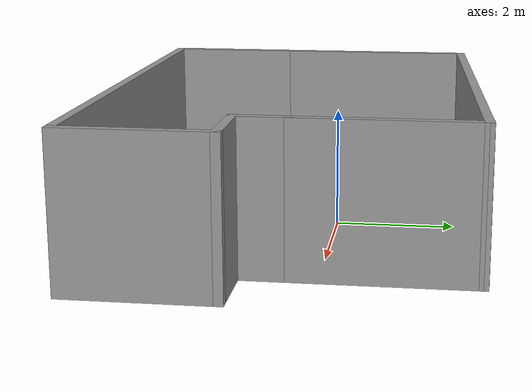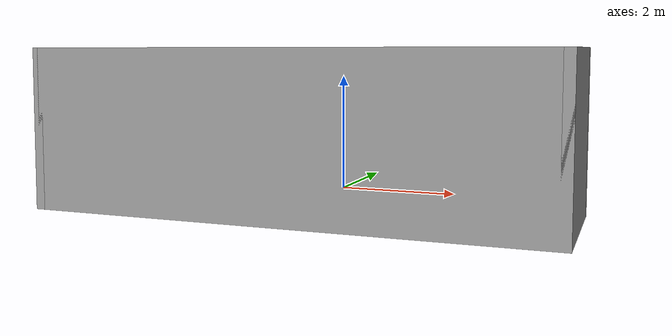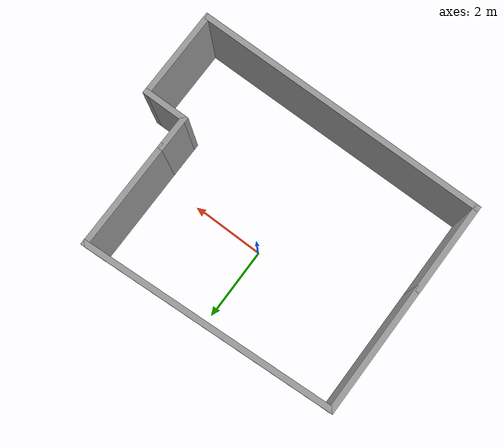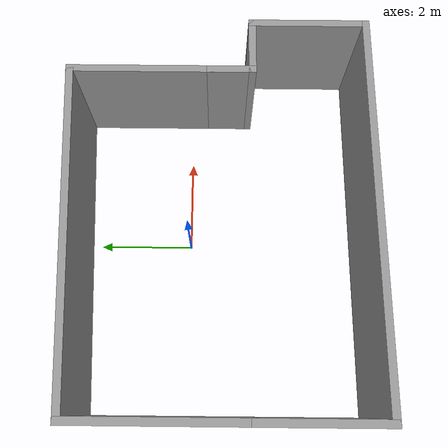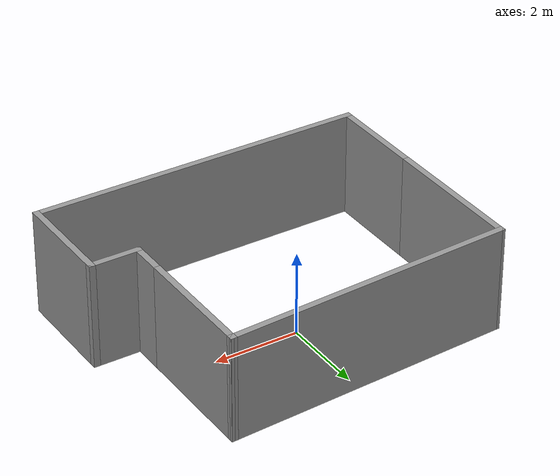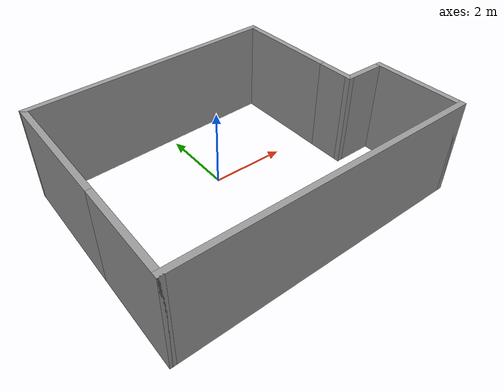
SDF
<?xml version='1.0'?>
<sdf version='1.6'>
  <model name='Building'>
    <pose frame=''>0.243109 -0.583108 0 0 -0 0</pose>
    <link name='Wall_0'>
      <collision name='Wall_0_Collision'>
        <geometry>
          <box>
            <size>2.5 0.15 2.5</size>
          </box>
        </geometry>
        <pose frame=''>0 0 1.25 0 -0 0</pose>
      </collision>
      <visual name='Wall_0_Visual'>
        <pose frame=''>0 0 1.25 0 -0 0</pose>
        <geometry>
          <box>
            <size>2.5 0.15 2.5</size>
          </box>
        </geometry>
        <material>
          <script>
            <uri>file://media/materials/scripts/gazebo.material</uri>
            <name>Gazebo/Grey</name>
          </script>
          <ambient>1 1 1 1</ambient>
        </material>
        <meta>
          <layer>0</layer>
        </meta>
      </visual>
      <pose frame=''>-3.92311 -1.85189 0 0 0 -1.5708</pose>
    </link>
    <link name='Wall_1'>
      <collision name='Wall_1_Collision'>
        <geometry>
          <box>
            <size>8 0.15 2.5</size>
          </box>
        </geometry>
        <pose frame=''>0 0 1.25 0 -0 0</pose>
      </collision>
      <visual name='Wall_1_Visual'>
        <pose frame=''>0 0 1.25 0 -0 0</pose>
        <geometry>
          <box>
            <size>8 0.15 2.5</size>
          </box>
        </geometry>
        <material>
          <script>
            <uri>file://media/materials/scripts/gazebo.material</uri>
            <name>Gazebo/Grey</name>
          </script>
          <ambient>1 1 1 1</ambient>
        </material>
        <meta>
          <layer>0</layer>
        </meta>
      </visual>
      <pose frame=''>0.001891 -3.02689 0 0 -0 0</pose>
    </link>
    <link name='Wall_2'>
      <collision name='Wall_2_Collision'>
        <geometry>
          <box>
            <size>2.5 0.15 2.5</size>
          </box>
        </geometry>
        <pose frame=''>0 0 1.25 0 -0 0</pose>
      </collision>
      <visual name='Wall_2_Visual'>
        <pose frame=''>0 0 1.25 0 -0 0</pose>
        <geometry>
          <box>
            <size>2.5 0.15 2.5</size>
          </box>
        </geometry>
        <material>
          <script>
            <uri>file://media/materials/scripts/gazebo.material</uri>
            <name>Gazebo/Grey</name>
          </script>
          <ambient>1 1 1 1</ambient>
        </material>
        <meta>
          <layer>0</layer>
        </meta>
      </visual>
      <pose frame=''>3.92689 -1.85189 0 0 -0 1.5708</pose>
    </link>
    <link name='Wall_3'>
      <collision name='Wall_3_Collision'>
        <geometry>
          <box>
            <size>1.25 0.15 2.5</size>
          </box>
        </geometry>
        <pose frame=''>0 0 1.25 0 -0 0</pose>
      </collision>
      <visual name='Wall_3_Visual'>
        <pose frame=''>0 0 1.25 0 -0 0</pose>
        <geometry>
          <box>
            <size>1.25 0.15 2.5</size>
          </box>
        </geometry>
        <material>
          <script>
            <uri>file://media/materials/scripts/gazebo.material</uri>
            <name>Gazebo/Grey</name>
          </script>
          <ambient>1 1 1 1</ambient>
        </material>
        <meta>
          <layer>0</layer>
        </meta>
      </visual>
      <pose frame=''>3.37689 -0.676892 0 0 -0 3.14159</pose>
    </link>
    <link name='Wall_4'>
      <collision name='Wall_4_Collision'>
        <geometry>
          <box>
            <size>1 0.15 2.5</size>
          </box>
        </geometry>
        <pose frame=''>0 0 1.25 0 -0 0</pose>
      </collision>
      <visual name='Wall_4_Visual'>
        <pose frame=''>0 0 1.25 0 -0 0</pose>
        <geometry>
          <box>
            <size>1 0.15 2.5</size>
          </box>
        </geometry>
        <material>
          <script>
            <uri>file://media/materials/scripts/gazebo.material</uri>
            <name>Gazebo/Grey</name>
          </script>
          <ambient>1 1 1 1</ambient>
        </material>
        <meta>
          <layer>0</layer>
        </meta>
      </visual>
      <pose frame=''>2.82689 -0.251892 0 0 -0 1.5708</pose>
    </link>
    <link name='Wall_5'>
      <collision name='Wall_5_Collision'>
        <geometry>
          <box>
            <size>3 0.15 2.5</size>
          </box>
        </geometry>
        <pose frame=''>0 0 1.25 0 -0 0</pose>
      </collision>
      <visual name='Wall_5_Visual'>
        <pose frame=''>0 0 1.25 0 -0 0</pose>
        <geometry>
          <box>
            <size>3 0.15 2.5</size>
          </box>
        </geometry>
        <material>
          <script>
            <uri>file://media/materials/scripts/gazebo.material</uri>
            <name>Gazebo/Grey</name>
          </script>
          <ambient>1 1 1 1</ambient>
        </material>
        <meta>
          <layer>0</layer>
        </meta>
      </visual>
      <pose frame=''>2.82689 1.59811 0 0 -0 1.5708</pose>
    </link>
    <link name='Wall_8'>
      <collision name='Wall_8_Collision'>
        <geometry>
          <box>
            <size>3.5 0.15 2.5</size>
          </box>
        </geometry>
        <pose frame=''>0 0 1.25 0 -0 0</pose>
      </collision>
      <visual name='Wall_8_Visual'>
        <pose frame=''>0 0 1.25 0 -0 0</pose>
        <geometry>
          <box>
            <size>3.5 0.15 2.5</size>
          </box>
        </geometry>
        <material>
          <script>
            <uri>file://media/materials/scripts/gazebo.material</uri>
            <name>Gazebo/Grey</name>
          </script>
          <ambient>1 1 1 1</ambient>
        </material>
        <meta>
          <layer>0</layer>
        </meta>
      </visual>
      <pose frame=''>-3.92311 0.998108 0 0 -0 1.5708</pose>
    </link>
    <link name='Wall_9'>
      <collision name='Wall_9_Collision'>
        <geometry>
          <box>
            <size>6.90907 0.15 2.5</size>
          </box>
        </geometry>
        <pose frame=''>0 0 1.25 0 -0 0</pose>
      </collision>
      <visual name='Wall_9_Visual'>
        <pose frame=''>0 0 1.25 0 -0 0</pose>
        <geometry>
          <box>
            <size>6.90907 0.15 2.5</size>
          </box>
        </geometry>
        <material>
          <script>
            <uri>file://media/materials/scripts/gazebo.material</uri>
            <name>Gazebo/Grey</name>
          </script>
          <ambient>1 1 1 1</ambient>
        </material>
        <meta>
          <layer>0</layer>
        </meta>
      </visual>
      <pose frame=''>-0.548109 2.84811 0 0 -0 0.051805</pose>
    </link>
    <static>1</static>
  </model>
</sdf>
